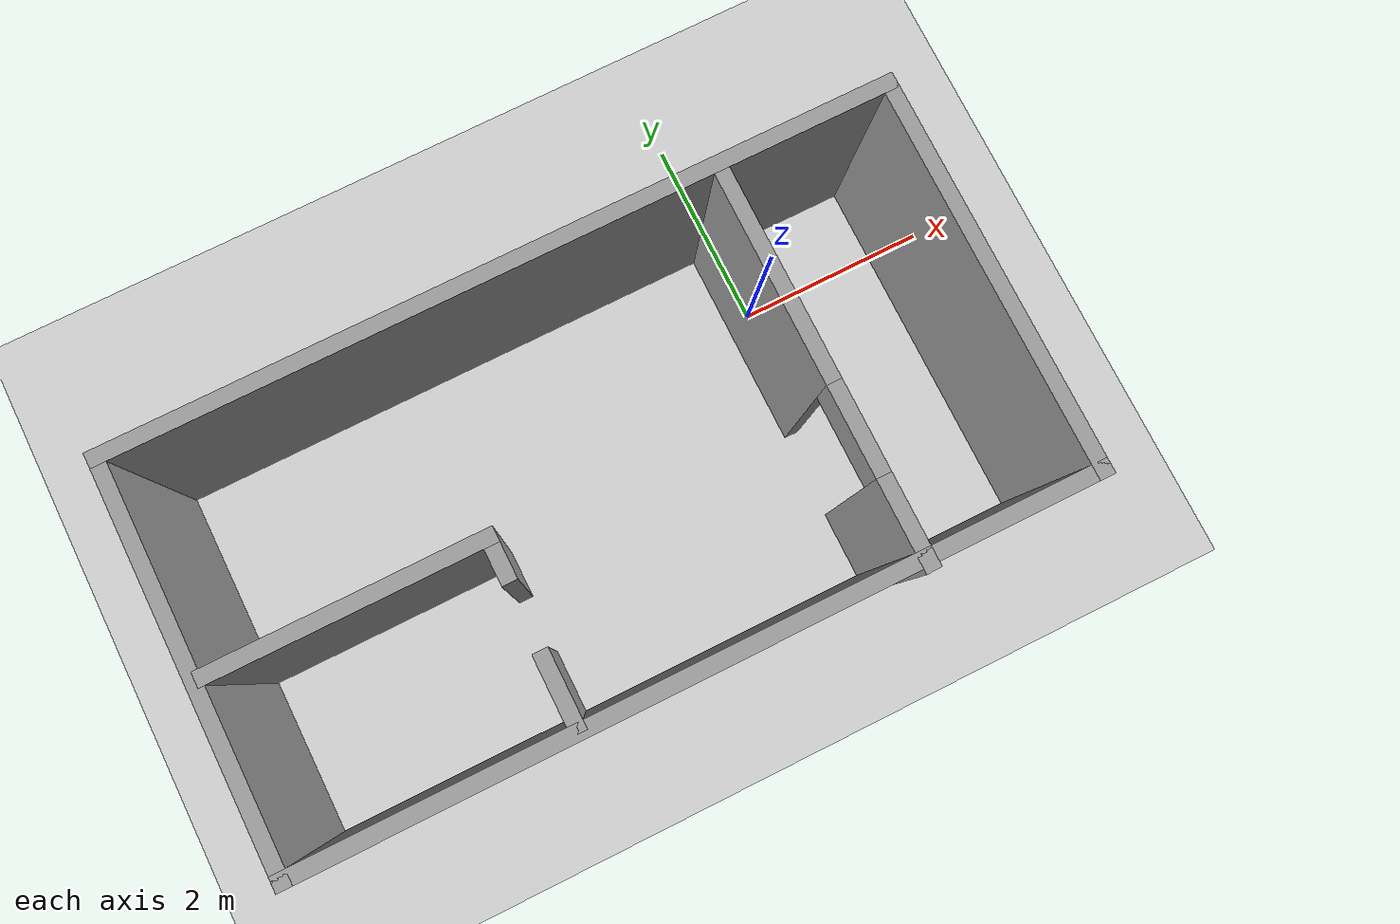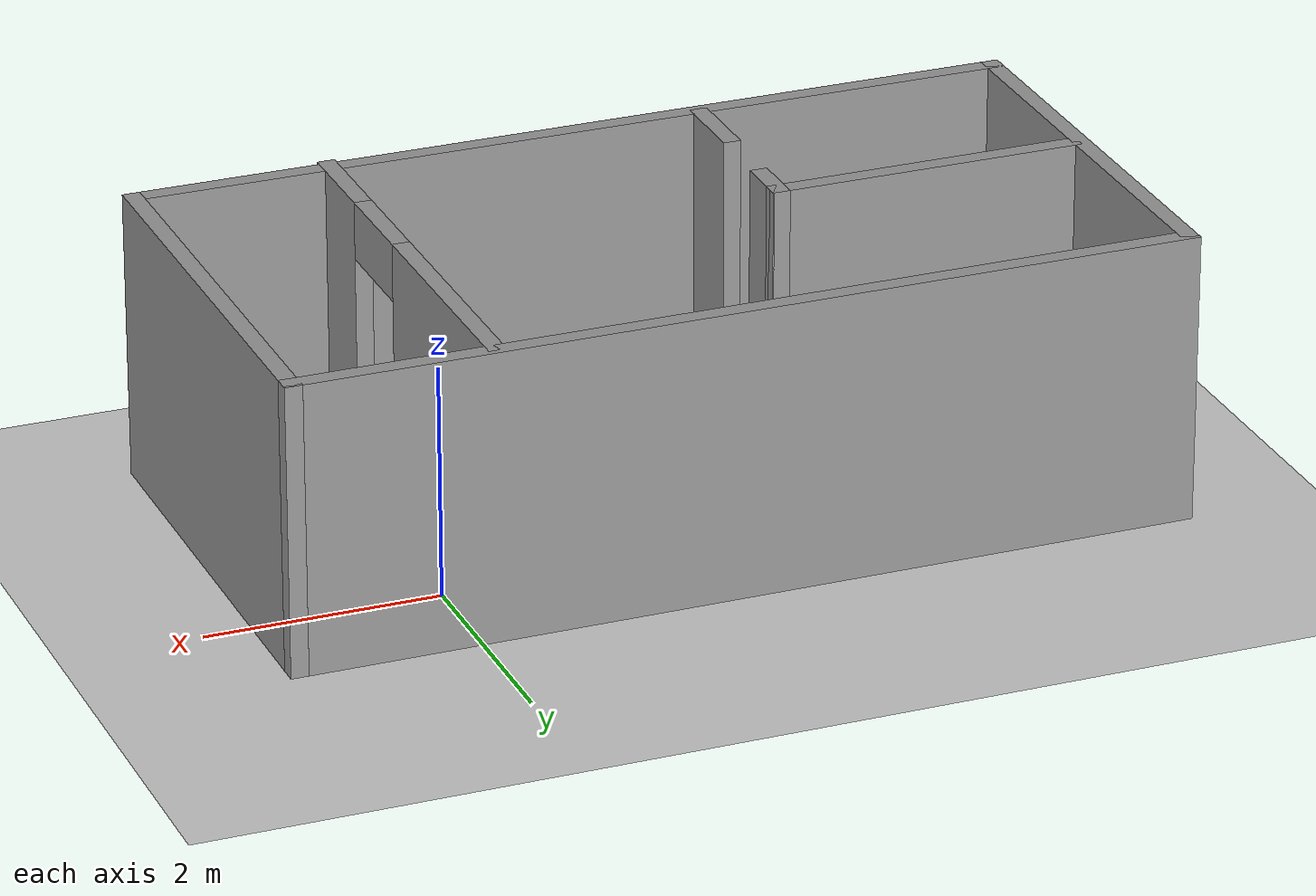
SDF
<sdf version="1.6">
 <world name="default">
  <light name="sun" type="directional">
   <pose>0 0 10 0 -0 0</pose>
   <diffuse>0.8 0.8 0.8 1</diffuse>
   <specular>0.2 0.2 0.2 1</specular>
   <attenuation>
    <range>1000</range>
    <constant>0.9</constant>
    <linear>0.01</linear>
    <quadratic>0.001</quadratic>
   </attenuation>
   <direction>-0.5 0.1 -0.9</direction>
  </light>
  <model name="ground_plane">
   <static>1</static>
   <link name="link">
    <collision name="collision">
     <geometry><plane><normal>0 0 1</normal><size>100 100</size></plane></geometry>
     <surface>
      <contact><collide_bitmask>65535</collide_bitmask></contact>
      <friction><ode><mu>100</mu><mu2>50</mu2></ode></friction>
     </surface>
    </collision>
    <visual name="visual">
     <cast_shadows>0</cast_shadows>
     <geometry><plane><normal>0 0 1</normal><size>100 100</size></plane></geometry>
     <material>
      <script><uri>file://media/materials/scripts/gazebo.material</uri><name>Gazebo/Grey</name></script>
     </material>
    </visual>
   </link>
  </model>
  <physics name="default_physics" default="0" type="ode">
   <real_time_update_rate>1000</real_time_update_rate>
   <max_step_size>0.001</max_step_size>
   <real_time_factor>1</real_time_factor>
   <ode>
    <solver>
     <type>quick</type>
     <iters>150</iters>
     <precon_iters>0</precon_iters>
     <sor>1.4</sor>
     <use_dynamic_moi_rescaling>1</use_dynamic_moi_rescaling>
    </solver>
    <constraints>
     <cfm>1e-05</cfm>
     <erp>0.2</erp>
     <contact_max_correcting_vel>2000</contact_max_correcting_vel>
     <contact_surface_layer>0.01</contact_surface_layer>
    </constraints>
   </ode>
  </physics>
  <scene><ambient>0.4 0.4 0.4 1</ambient><background>0.7 0.7 0.7 1</background><shadows>1</shadows></scene>
  <gravity>0 0 -9.8</gravity>
  <magnetic_field>6e-06 2.3e-05 -4.2e-05</magnetic_field>
  <atmosphere type="adiabatic"/>
  <audio><device>default</device></audio>
  <spherical_coordinates>
   <surface_model>EARTH_WGS84</surface_model>
   <latitude_deg>0</latitude_deg>
   <longitude_deg>0</longitude_deg>
   <elevation>0</elevation>
   <heading_deg>0</heading_deg>
  </spherical_coordinates>
  <model name="2">
   <pose>-2.28 -1.1 0 0 -0 0</pose>
   <link name="Wall_1">
    <collision name="Wall_1_Collision">
     <geometry><box><size>4 0.15 2.5</size></box></geometry>
     <pose>0 0 1.25 0 -0 0</pose>
    </collision>
    <visual name="Wall_1_Visual">
     <pose>0 0 1.25 0 -0 0</pose>
     <geometry><box><size>4 0.15 2.5</size></box></geometry>
     <material>
      <script><uri>file://media/materials/scripts/gazebo.material</uri><name>Gazebo/Grey</name></script>
      <ambient>1 1 1 1</ambient>
     </material>
     <meta><layer>0</layer></meta>
    </visual>
    <pose>-3.8 0.025 0 0 -0 -1.5708</pose>
   </link>
   <link name="Wall_11">
    <collision name="Wall_11_Collision">
     <geometry><box><size>2.75 0.15 2.5</size></box></geometry>
     <pose>0 0 1.25 0 -0 0</pose>
    </collision>
    <visual name="Wall_11_Visual">
     <pose>0 0 1.25 0 -0 0</pose>
     <geometry><box><size>2.75 0.15 2.5</size></box></geometry>
     <material>
      <script><uri>file://media/materials/scripts/gazebo.material</uri><name>Gazebo/Grey</name></script>
      <ambient>1 1 1 1</ambient>
     </material>
     <meta><layer>0</layer></meta>
    </visual>
    <pose>-2.41 -0.13 0 0 -0 0</pose>
   </link>
   <link name="Wall_12">
    <collision name="Wall_12_Collision">
     <geometry><box><size>0.5 0.15 2.5</size></box></geometry>
     <pose>0 0 1.25 0 -0 0</pose>
    </collision>
    <visual name="Wall_12_Visual">
     <pose>0 0 1.25 0 -0 0</pose>
     <geometry><box><size>0.5 0.15 2.5</size></box></geometry>
     <material>
      <script><uri>file://media/materials/scripts/gazebo.material</uri><name>Gazebo/Grey</name></script>
      <ambient>1 1 1 1</ambient>
     </material>
     <meta><layer>0</layer></meta>
    </visual>
    <pose>-1.11 -0.305 0 0 -0 -1.5708</pose>
   </link>
   <link name="Wall_14">
    <collision name="Wall_14_Collision">
     <geometry><box><size>0.75 0.15 2.5</size></box></geometry>
     <pose>0 0 1.25 0 -0 0</pose>
    </collision>
    <visual name="Wall_14_Visual">
     <pose>0 0 1.25 0 -0 0</pose>
     <geometry><box><size>0.75 0.15 2.5</size></box></geometry>
     <material>
      <script><uri>file://media/materials/scripts/gazebo.material</uri><name>Gazebo/Grey</name></script>
      <ambient>1 1 1 1</ambient>
     </material>
     <meta><layer>0</layer></meta>
    </visual>
    <pose>-1.13 -1.54 0 0 -0 -1.5708</pose>
   </link>
   <link name="Wall_2">
    <collision name="Wall_2_Collision">
     <geometry><box><size>7.75 0.15 2.5</size></box></geometry>
     <pose>0 0 1.25 0 -0 0</pose>
    </collision>
    <visual name="Wall_2_Visual">
     <pose>0 0 1.25 0 -0 0</pose>
     <geometry><box><size>7.75 0.15 2.5</size></box></geometry>
     <material>
      <script><uri>file://media/materials/scripts/gazebo.material</uri><name>Gazebo/Grey</name></script>
      <ambient>1 1 1 1</ambient>
     </material>
     <meta><layer>0</layer></meta>
    </visual>
    <pose>0 -1.9 0 0 -0 0</pose>
   </link>
   <link name="Wall_3">
    <collision name="Wall_3_Collision">
     <geometry><box><size>4 0.15 2.5</size></box></geometry>
     <pose>0 0 1.25 0 -0 0</pose>
    </collision>
    <visual name="Wall_3_Visual">
     <pose>0 0 1.25 0 -0 0</pose>
     <geometry><box><size>4 0.15 2.5</size></box></geometry>
     <material>
      <script><uri>file://media/materials/scripts/gazebo.material</uri><name>Gazebo/Grey</name></script>
      <ambient>1 1 1 1</ambient>
     </material>
     <meta><layer>0</layer></meta>
    </visual>
    <pose>3.8 0.025 0 0 -0 1.5708</pose>
   </link>
   <link name="Wall_4">
    <collision name="Wall_4_Collision">
     <geometry><box><size>7.75 0.15 2.5</size></box></geometry>
     <pose>0 0 1.25 0 -0 0</pose>
    </collision>
    <visual name="Wall_4_Visual">
     <pose>0 0 1.25 0 -0 0</pose>
     <geometry><box><size>7.75 0.15 2.5</size></box></geometry>
     <material>
      <script><uri>file://media/materials/scripts/gazebo.material</uri><name>Gazebo/Grey</name></script>
      <ambient>1 1 1 1</ambient>
     </material>
     <meta><layer>0</layer></meta>
    </visual>
    <pose>0 1.95 0 0 -0 3.14159</pose>
   </link>
   <link name="Wall_6">
    <pose>2.11 -0.025 0 0 -0 -1.5708</pose>
    <visual name="Wall_6_Visual_0">
     <pose>-0.8975 0 1.25 0 -0 0</pose>
     <geometry><box><size>2.205 0.15 2.5</size></box></geometry>
     <material>
      <script><uri>file://media/materials/scripts/gazebo.material</uri><name>Gazebo/Grey</name></script>
      <ambient>1 1 1 1</ambient>
     </material>
     <meta><layer>0</layer></meta>
    </visual>
    <collision name="Wall_6_Collision_0">
     <geometry><box><size>2.205 0.15 2.5</size></box></geometry>
     <pose>-0.8975 0 1.25 0 -0 0</pose>
    </collision>
    <visual name="Wall_6_Visual_1">
     <pose>1.5525 0 1.25 0 -0 0</pose>
     <geometry><box><size>0.895 0.15 2.5</size></box></geometry>
     <material>
      <script><uri>file://media/materials/scripts/gazebo.material</uri><name>Gazebo/Grey</name></script>
      <ambient>1 1 1 1</ambient>
     </material>
     <meta><layer>0</layer></meta>
    </visual>
    <collision name="Wall_6_Collision_1">
     <geometry><box><size>0.895 0.15 2.5</size></box></geometry>
     <pose>1.5525 0 1.25 0 -0 0</pose>
    </collision>
    <visual name="Wall_6_Visual_2">
     <pose>0.655 0 2.25 0 -0 0</pose>
     <geometry><box><size>0.9 0.15 0.5</size></box></geometry>
     <material>
      <script><uri>file://media/materials/scripts/gazebo.material</uri><name>Gazebo/Grey</name></script>
      <ambient>1 1 1 1</ambient>
     </material>
     <meta><layer>0</layer></meta>
    </visual>
    <collision name="Wall_6_Collision_2">
     <geometry><box><size>0.9 0.15 0.5</size></box></geometry>
     <pose>0.655 0 2.25 0 -0 0</pose>
    </collision>
   </link>
   <static>1</static>
  </model>
 </world>
</sdf>
